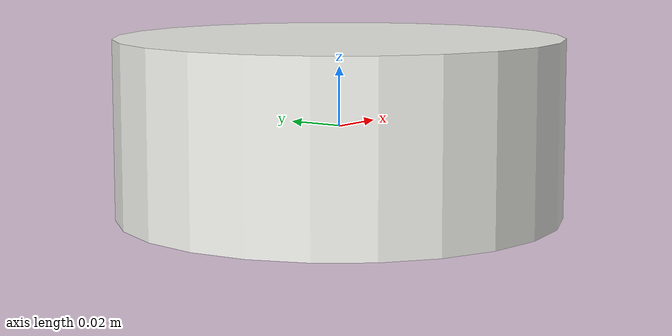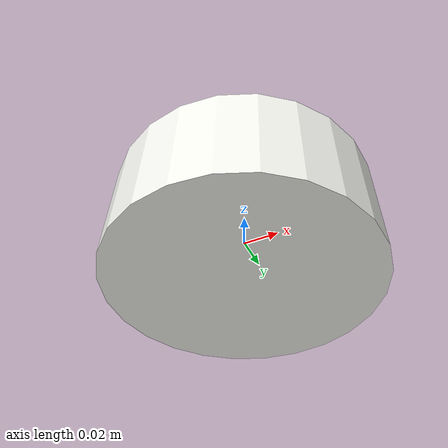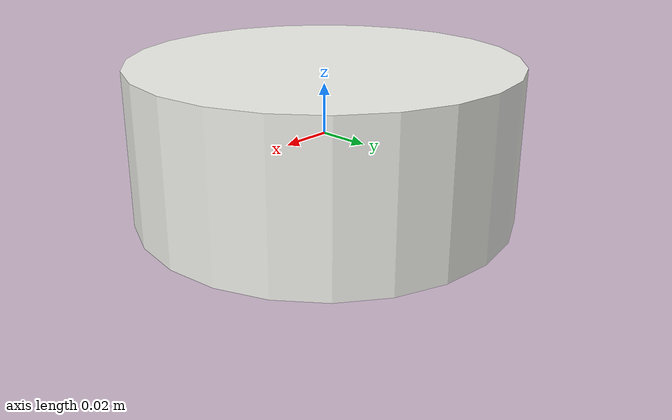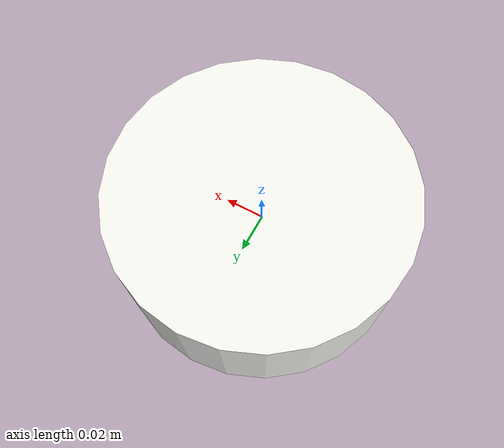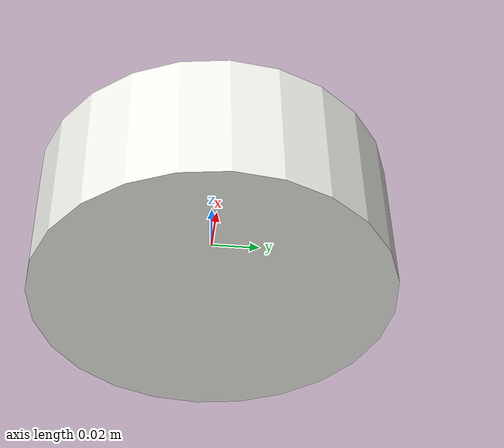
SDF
<?xml version="1.0"?>
<sdf version="1.6">
  <model name="white_bowl">
    <link name="link">
      <inertial>
        <mass>0.30</mass>
        <inertia>
          <ixx>0.00050</ixx><ixy>0</ixy><ixz>0</ixz>
          <iyy>0.00050</iyy><iyz>0</iyz>
          <izz>0.00084</izz>
        </inertia>
      </inertial>
      <collision name="collision">
        <geometry>
          <cylinder><radius>0.075</radius><length>0.06</length></cylinder>
        </geometry>
        <surface>
          <friction><ode><mu>0.9</mu><mu2>0.9</mu2></ode></friction>
          <contact><ode><max_vel>0.01</max_vel><min_depth>0.001</min_depth></ode></contact>
        </surface>
      </collision>
      <visual name="visual">
        <geometry>
          <cylinder><radius>0.075</radius><length>0.06</length></cylinder>
        </geometry>
        <material>
          <ambient>0.85 0.85 0.85 1</ambient>
          <diffuse>0.95 0.95 0.93 1</diffuse>
          <specular>0.6 0.6 0.6 1</specular>
        </material>
      </visual>
    </link>
  </model>
</sdf>
